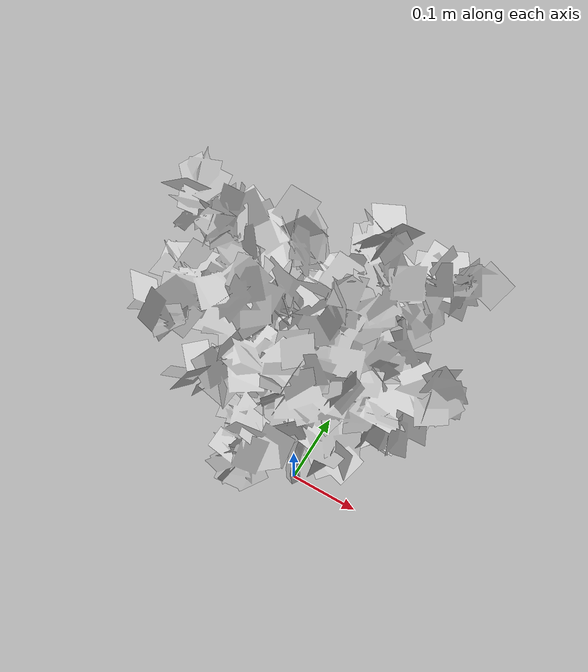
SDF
<?xml version="1.0" ?>
<sdf version="1.6">
  <model name="tree-mesh">
    <static>true</static>
    <link name="link">

      <collision name="collision">
        <geometry>
          <mesh>
            <uri>model://tree-mesh/meshes/new_tree.dae</uri>
            <scale>0.0625 0.0625 0.0625</scale>
          </mesh>
        </geometry>
      </collision>

      <!-- simplified collision for sake of speed since leaves shouldn't be blocking anyway -->

      <visual name="leaves">
        <geometry>
          <mesh>
            <uri>model://tree-mesh/meshes/leaves.dae</uri>
            <scale>0.0325 0.0325 0.0325</scale>
          </mesh>
        </geometry>
        <material>
          <script>
            <uri>model://tree-mesh/materials/scripts/</uri>
            <uri>model://tree-mesh/materials/textures/</uri>
            <name>NewTree/Branch</name>
          </script>
        </material>
      </visual>
      <visual name="bark">
        <geometry>
          <mesh>
            <uri>model://tree-mesh/meshes/bark.dae</uri>
            <scale>0.0325 0.0325 0.0325</scale>
          </mesh>
        </geometry>
        <material>
          <script>
            <uri>model://tree-mesh/materials/scripts/</uri>
            <uri>model://tree-mesh/materials/textures/</uri>
            <name>NewTree/Bark</name>
          </script>
        </material>
      </visual>
    </link>
  </model>
</sdf>
